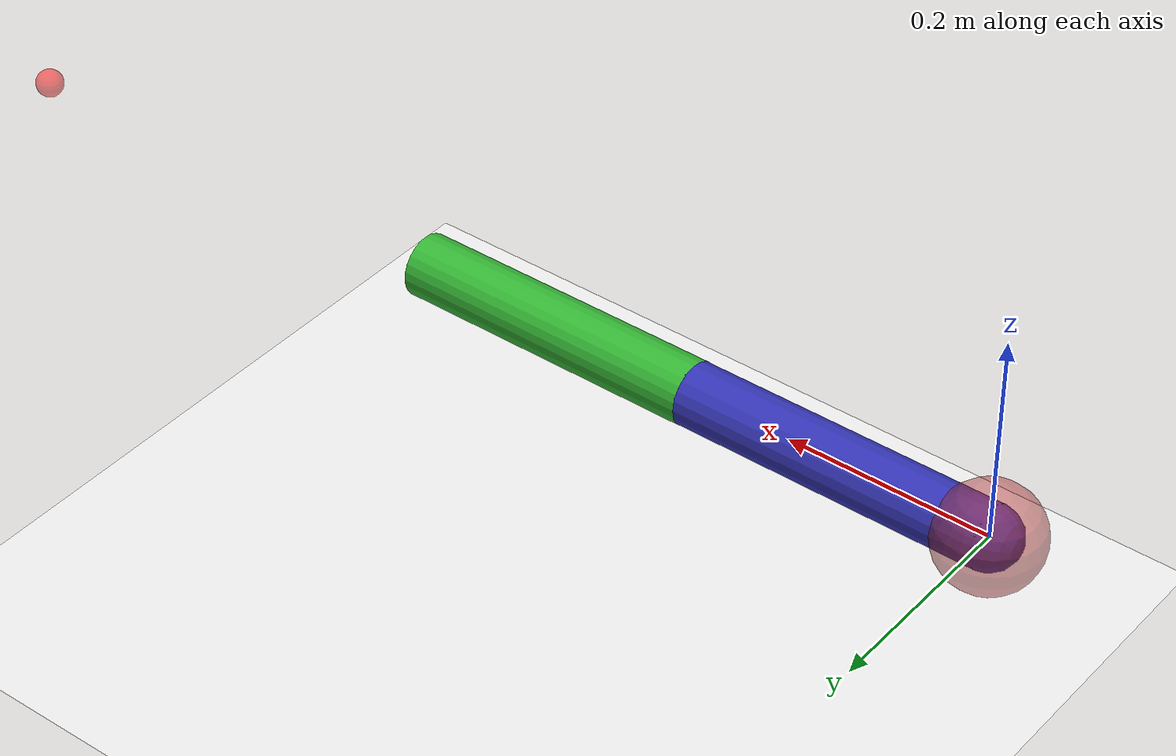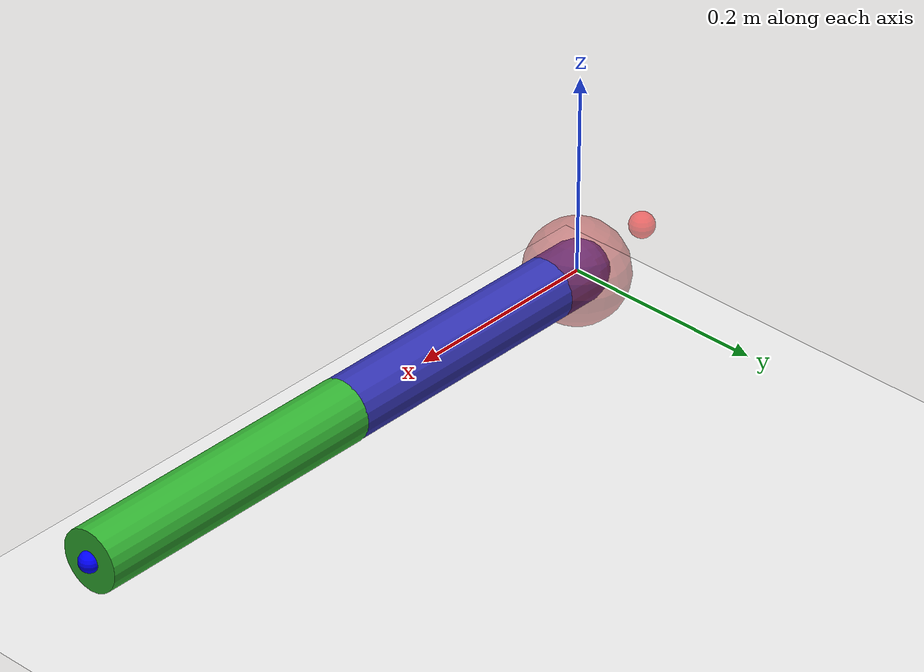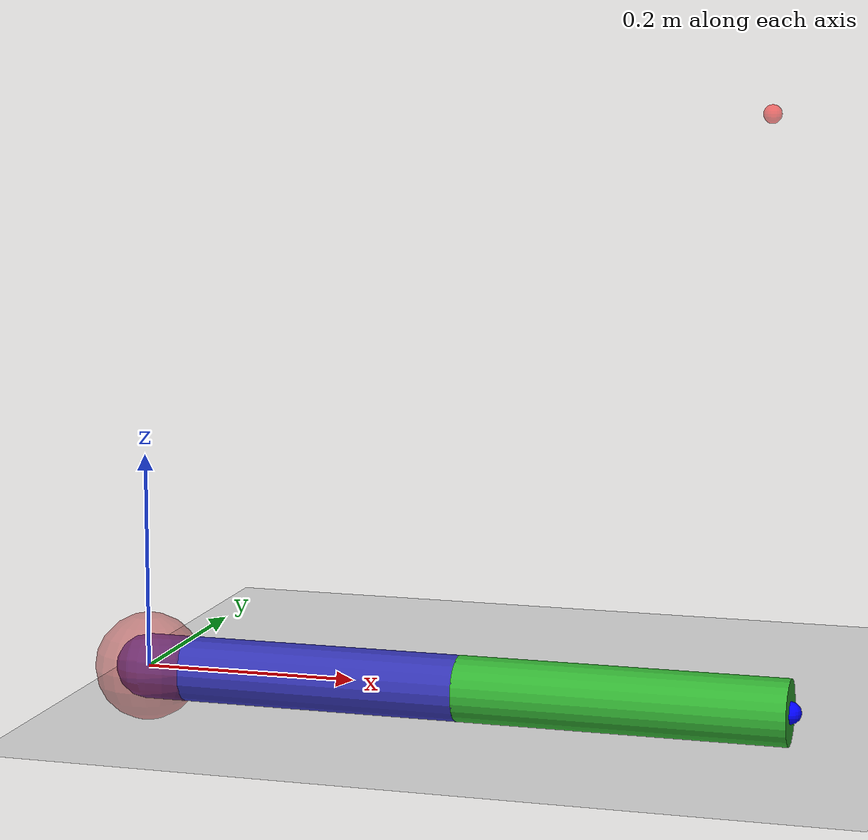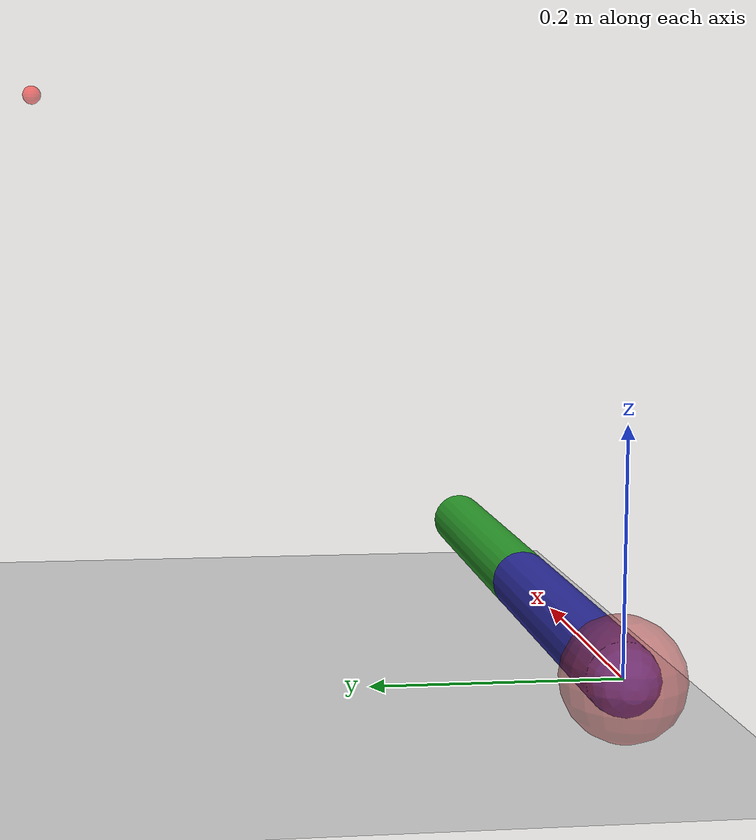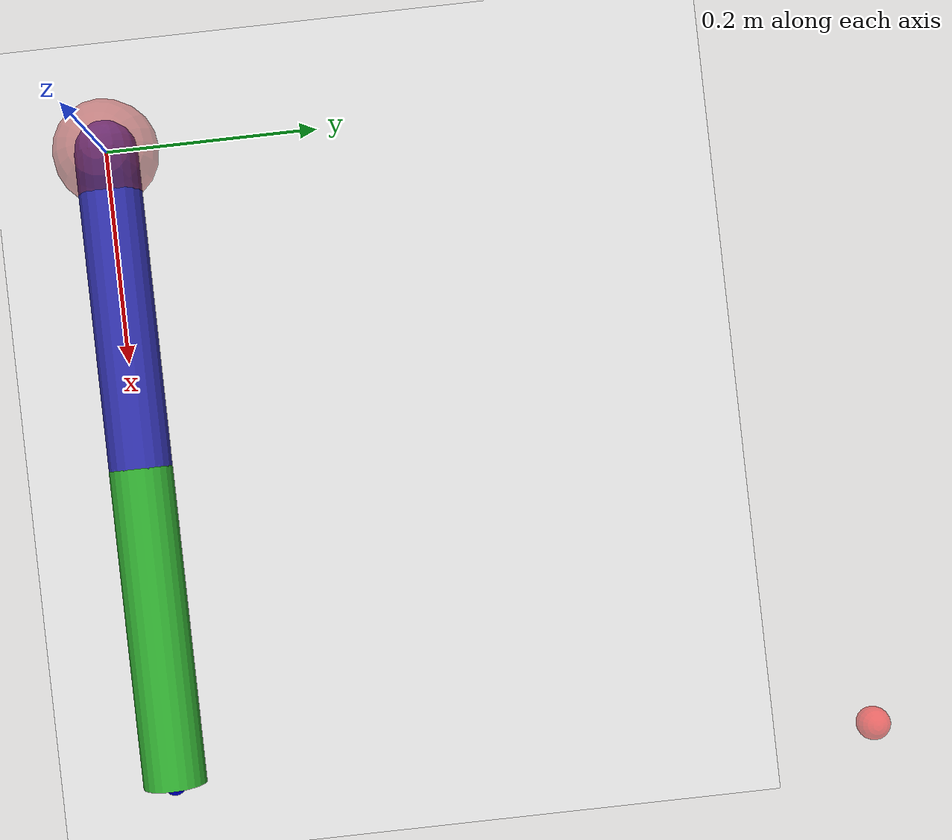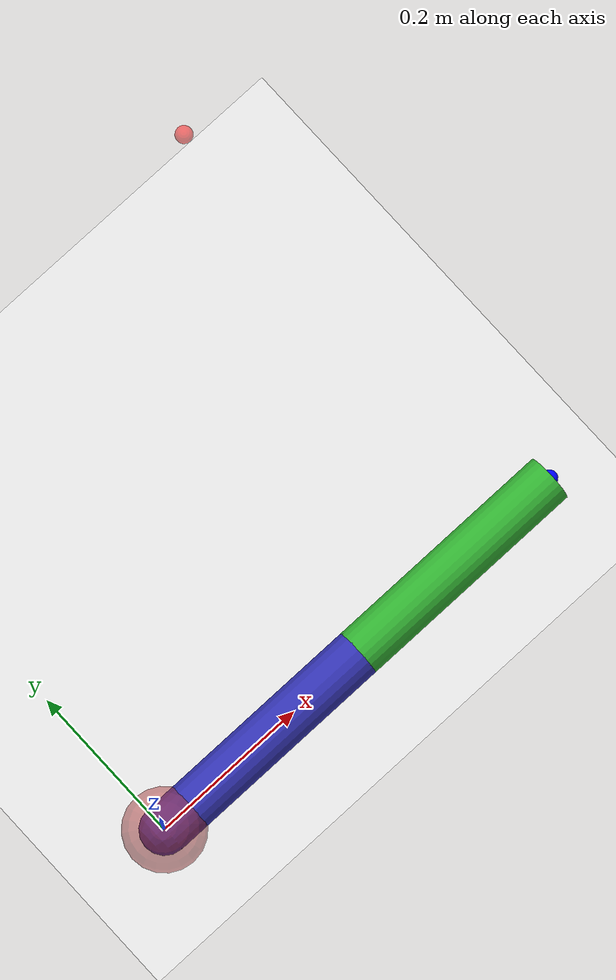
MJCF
<mujoco model="2R_robotic_arm">
    <!-- Comments by CRTL K + CRTL C -->

    <!--coordinate local sorgt dafür dass children das parent coordsys benutzen und nicht das globale Koordsys'-->
    <!-- inertiafromgeom="true" Massenträgheitsmatrix wird von mujoco anhand der geometrie berechnet -->
    <compiler angle="degree" coordinate="local" inertiafromgeom="true"/>
    <option timestep="0.01" gravity="0 0 -9.81" />

    <worldbody>
        <light pos="0 0 3" dir="0 0 -1" diffuse="1 1 1"/>
        <geom name="floor" pos = " 0 0 -0.06" type="plane" size="2 2 0.1" rgba=".9 .9 .9 0.7"/>

        <!-- target body for rendering -->
        <body name="target" mocap="true" pos="0.5 0.5 0.5">
            <geom type="sphere" size="0.01" rgba="1 0 0 0.5" conaffinity="0" contype="0"/>
        </body>

        <!-- Base of the robotic arm -->
        <body name="base" pos="0 0 0">
            <geom type="sphere" size="0.05" rgba="0.7 0.2 0.2 0.5" />

            <!-- First link -->
            <body name="link1" pos="0 0 0">
                <joint name="joint1" type="hinge" axis="0 0 1" damping ="0.4" limited="true" range="-360 360"/>
                <joint name="joint12" type="hinge" axis="0 1 0" damping ="0.4" limited="true" range="-180 0"/>
                <geom type="capsule" fromto="0 0 0 0.3 0 0" size="0.03" rgba="0.2 0.2 0.7 1" />
                <!-- Site at end of link1 -->
                    <site name="site_link1" pos="0.3 0 0" size="0.01" rgba="0 0 1 1"/>
                <!-- Second link -->
                <body name="link2" pos="0.3 0 0">
                    <joint name="joint2" type="hinge" axis="0 1 0"  damping ="0.4" limited="true" range="-150 150"/>
                    <geom type="cylinder" fromto="0 0 0 0.3 0 0" size="0.03" rgba="0.2 0.7 0.2 1" />
                    <!-- Tool Center Point with IMU -->
                    <site name="tcp" pos="0.3 0 0" size="0.01" rgba="0 0 1 1"/>
                </body>
            </body>
        </body>
    </worldbody>

    <actuator>

        <!-- ctrlrange="-50 50" begrenzt drehmoment -->
        <!-- ctrllimited="true" aktiviert die Begrenzung -->
	    <motor joint="joint1" ctrlrange="-10 10" ctrllimited="true"/>
        <motor joint="joint12" ctrlrange="-10 10" ctrllimited="true"/>
	    <motor joint="joint2" ctrlrange="-10 10" ctrllimited="true"/>
    </actuator>
    <sensor>
        <accelerometer name="accel" site="tcp"/>
        <gyro name="gyro" site="tcp"/>
  </sensor>
</mujoco>
